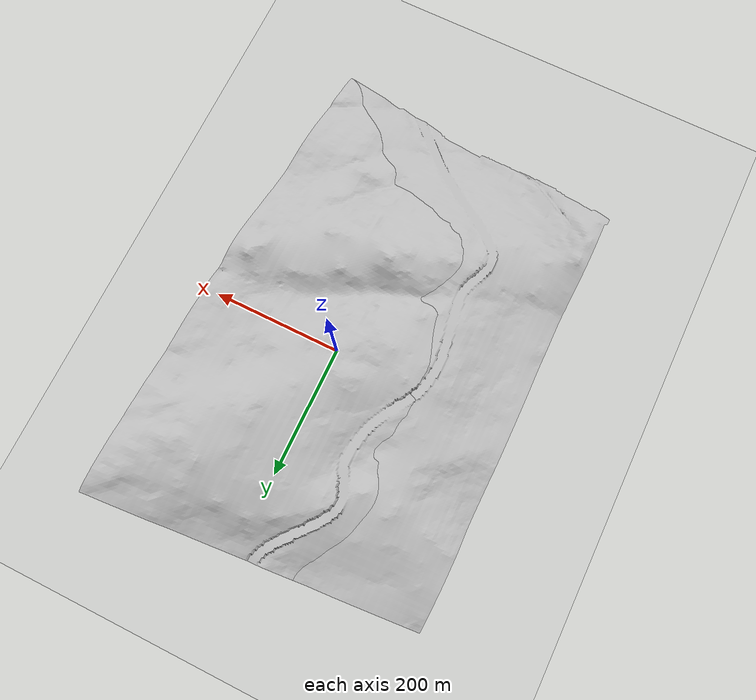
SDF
<?xml version="1.0"?>
<sdf version="1.9">
  <world name="drdo_world1_overlay">
    <!-- Untextured/white terrain variant, used for UGV navigation runs
         after the UAV has finished mapping (see project README). -->

    <plugin filename="gz-sim-physics-system" name="gz::sim::systems::Physics"></plugin>
    <plugin filename="gz-sim-user-commands-system" name="gz::sim::systems::UserCommands"></plugin>
    <plugin filename="gz-sim-scene-broadcaster-system" name="gz::sim::systems::SceneBroadcaster"></plugin>
    <plugin filename="gz-sim-sensors-system" name="gz::sim::systems::Sensors">
      <render_engine>ogre2</render_engine>
    </plugin>
    <plugin filename="gz-sim-imu-system" name="gz::sim::systems::Imu"></plugin>
    <plugin filename="gz-sim-air-pressure-system" name="gz::sim::systems::AirPressure"></plugin>
    <plugin filename="gz-sim-magnetometer-system" name="gz::sim::systems::Magnetometer"></plugin>
    <plugin filename="gz-sim-navsat-system" name="gz::sim::systems::NavSat"></plugin>
    <plugin filename="gz-sim-contact-system" name="gz::sim::systems::Contact"></plugin>

    <light name="sun" type="directional">
      <cast_shadows>true</cast_shadows>
      <pose>0 0 10 0 0 0</pose>
      <diffuse>0.8 0.8 0.8 1</diffuse>
      <specular>0.2 0.2 0.2 1</specular>
      <attenuation>
        <range>1000</range>
        <constant>0.9</constant>
        <linear>0.01</linear>
        <quadratic>0.001</quadratic>
      </attenuation>
      <direction>-0.5 0.1 -0.9</direction>
    </light>

    <model name="ground_plane">
      <static>true</static>
      <link name="link">
        <collision name="collision">
          <geometry>
            <plane>
              <normal>0 0 1</normal>
              <size>100 100</size>
            </plane>
          </geometry>
          <surface>
            <friction>
              <ode><mu>100</mu><mu2>50</mu2></ode>
            </friction>
          </surface>
        </collision>
        <visual name="visual">
          <cast_shadows>false</cast_shadows>
          <geometry>
            <plane>
              <normal>0 0 1</normal>
              <size>100 100</size>
            </plane>
          </geometry>
          <material>
            <ambient>0.8 0.8 0.8 1</ambient>
            <diffuse>0.8 0.8 0.8 1</diffuse>
          </material>
        </visual>
      </link>
    </model>

    <include>
      <name>terrain</name>
      <uri>model://world1_mesh</uri>
      <pose>-71.1759 -74.4254 0 0 0 0</pose>
    </include>

    <gravity>0 0 -9.8</gravity>
    <magnetic_field>6e-06 2.3e-05 -4.2e-05</magnetic_field>
    <atmosphere type="adiabatic"/>

    <physics name="default_physics" default="0" type="ode">
      <max_step_size>0.004</max_step_size>
      <real_time_factor>1</real_time_factor>
      <real_time_update_rate>250</real_time_update_rate>
    </physics>

    <scene>
      <ambient>0.4 0.4 0.4 1</ambient>
      <background>0.7 0.7 0.7 1</background>
      <shadows>true</shadows>
    </scene>

    <wind/>

    <spherical_coordinates>
      <surface_model>EARTH_WGS84</surface_model>
      <latitude_deg>0</latitude_deg>
      <longitude_deg>0</longitude_deg>
      <elevation>0</elevation>
      <heading_deg>0</heading_deg>
    </spherical_coordinates>

    <!-- original user_camera pose: -949.404 39.2611 615.495 0 0.629801 -0.075816 -->
    <gui fullscreen="false">
      <plugin filename="MinimalScene" name="3D View">
        <gz-gui>
          <title>3D View</title>
          <property type="bool" key="showTitleBar">false</property>
          <property type="string" key="state">docked</property>
        </gz-gui>
        <engine>ogre2</engine>
        <scene>scene</scene>
        <ambient_light>0.4 0.4 0.4</ambient_light>
        <background_color>0.7 0.7 0.7</background_color>
        <camera_pose>-949.404 39.2611 615.495 0 0.629801 -0.075816</camera_pose>
      </plugin>
      <plugin filename="GzSceneManager" name="Scene Manager">
        <gz-gui><property key="resizable" type="bool">false</property><property key="width" type="double">5</property><property key="height" type="double">5</property><property key="state" type="string">floating</property><property key="showTitleBar" type="bool">false</property></gz-gui>
      </plugin>
      <plugin filename="InteractiveViewControl" name="Interactive view control">
        <gz-gui><property key="resizable" type="bool">false</property><property key="width" type="double">5</property><property key="height" type="double">5</property><property key="state" type="string">floating</property><property key="showTitleBar" type="bool">false</property></gz-gui>
      </plugin>
      <plugin filename="WorldControl" name="World control">
        <gz-gui>
          <title>World control</title>
          <property type="bool" key="showTitleBar">false</property>
          <property type="bool" key="resizable">false</property>
          <property type="double" key="height">72</property>
          <property type="double" key="width">121</property>
          <property type="double" key="z">1</property>
          <property type="string" key="state">floating</property>
          <anchors target="3D View">
            <line own="left" target="left"/>
            <line own="bottom" target="bottom"/>
          </anchors>
        </gz-gui>
        <play_pause>true</play_pause>
        <step>true</step>
        <start_paused>true</start_paused>
      </plugin>
      <plugin filename="WorldStats" name="World stats">
        <gz-gui>
          <title>World stats</title>
          <property type="bool" key="showTitleBar">false</property>
          <property type="bool" key="resizable">false</property>
          <property type="double" key="height">110</property>
          <property type="double" key="width">290</property>
          <property type="double" key="z">1</property>
          <property type="string" key="state">floating</property>
          <anchors target="3D View">
            <line own="right" target="right"/>
            <line own="bottom" target="bottom"/>
          </anchors>
        </gz-gui>
        <sim_time>true</sim_time>
        <real_time>true</real_time>
        <real_time_factor>true</real_time_factor>
        <iterations>true</iterations>
      </plugin>
      <plugin filename="EntityContextMenuPlugin" name="Entity context menu"></plugin>
      <plugin filename="SelectEntities" name="Select entities"></plugin>
      <plugin filename="VisualizationCapabilities" name="Visualization capabilities"></plugin>
      <plugin filename="Spawn" name="Spawn entities"></plugin>
    </gui>

  </world>
</sdf>

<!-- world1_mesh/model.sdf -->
<sdf version='1.6'>
  <model name='terrain'>
    <static>1</static>
    <link name='link'>
      <collision name='collision'><geometry><mesh><scale>50 50 50</scale><uri>model://world1_mesh/meshes/terrain_raster.dae</uri></mesh></geometry></collision>
      <visual name='visual'>
        <cast_shadows>0</cast_shadows>
        <geometry>
          <mesh>
            <scale>50 50 50</scale>
            <uri>model://world1_mesh/meshes/terrain_raster.dae</uri>
          </mesh>
        </geometry>
      </visual>
      <self_collide>0</self_collide>
      <enable_wind>0</enable_wind>
      <kinematic>0</kinematic>
    </link>
  </model>
</sdf>
